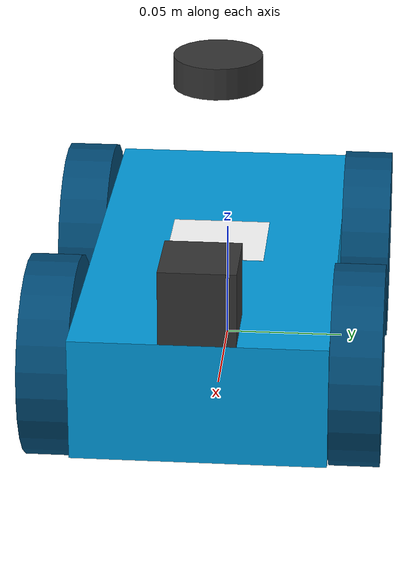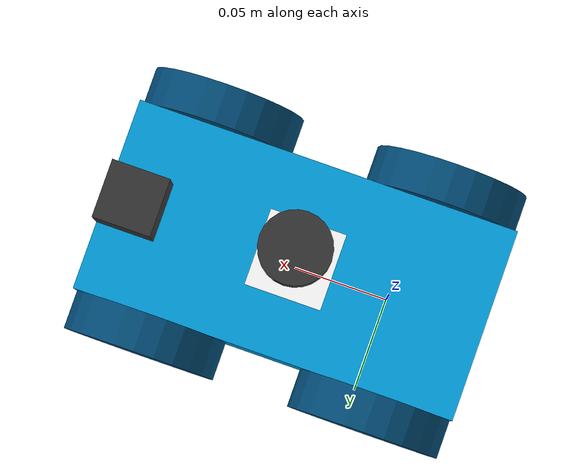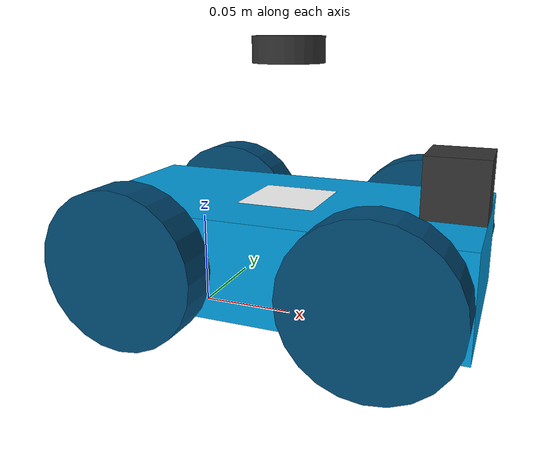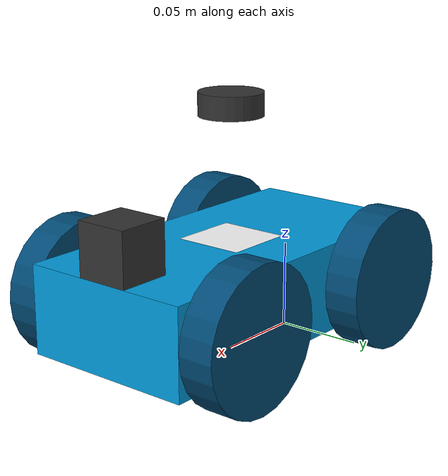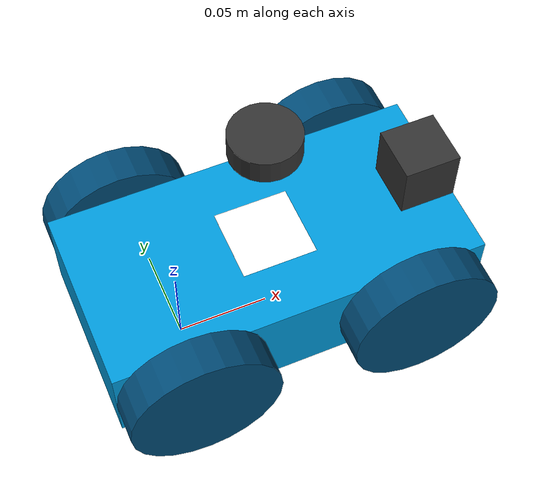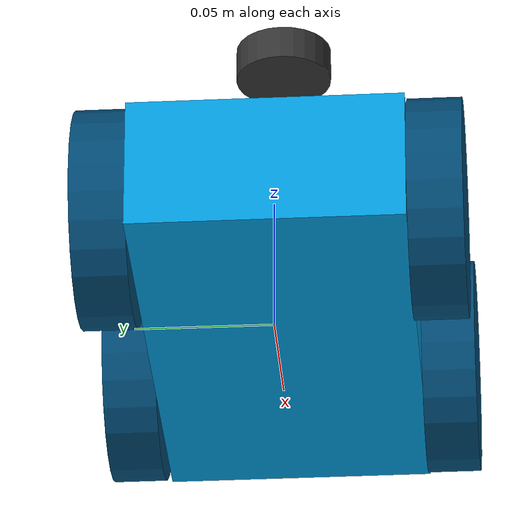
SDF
<?xml version="1.0" ?>
<sdf version="1.9">
  <model name="simple_robot" canonical_link="chassis">
    <pose>0 0 0 0 0 0</pose>

    <link name="chassis">
      <pose relative_to="__model__">0.05 0 0.04 0 0 0</pose>
      <inertial>
        <mass>4.5</mass>
        <inertia>
          <ixx>0.001191615</ixx><ixy>0</ixy><ixz>0</ixz>
          <iyy>0.004051490</iyy><iyz>0</iyz><izz>0.004766458</izz>
        </inertia>
      </inertial>
      <visual name="visual">
        <geometry><box><size>0.2 0.1 0.05</size></box></geometry>
        <material>
          <ambient>0.0 0.612 0.867 1</ambient>
          <diffuse>0.0 0.612 0.867 1</diffuse>
          <specular>0.0 0.612 0.867 1</specular>
        </material>
      </visual>

      <visual name="aruco_tag">
        <pose>0 0 0.0255 0 0 0</pose>
        <cast_shadows>false</cast_shadows>
        <geometry>
          <plane>
            <size>0.04 0.04</size>
            <normal>0 0 1</normal>
            <texture>
              <size>0.03 0.03</size>
            </texture>
          </plane>
        </geometry>
        <material>
          <diffuse>1 1 1 1</diffuse>
          <pbr>
            <metal>
              <albedo_map>file://models/simple_robot/Aruco3.png</albedo_map>
            </metal>
          </pbr>
          <double_sided>true</double_sided>
        </material>
      </visual>

      <collision name="collision">
        <geometry><box><size>0.2 0.1 0.05</size></box></geometry>
      </collision>
    </link>

    <!-- ROUE AVANT GAUCHE -->
    <link name="left_front_wheel">
      <pose relative_to="chassis">0.06 0.06 0 -1.5707 0 0</pose>
      <inertial>
        <mass>0.2</mass>
        <inertia>
          <ixx>0.000800</ixx><ixy>0</ixy><ixz>0</ixz>
          <iyy>0.000433</iyy><iyz>0</iyz><izz>0.000433</izz>
        </inertia>
      </inertial>
      <visual name="visual">
        <geometry><cylinder><radius>0.04</radius><length>0.02</length></cylinder></geometry>
        <material>
          <ambient>0.0 0.29 0.46 1</ambient>
          <diffuse>0.0 0.29 0.46 1</diffuse>
          <specular>0.0 0.0 0.0 1</specular>
        </material>
      </visual>
      <collision name="collision">
        <geometry><cylinder><radius>0.04</radius><length>0.02</length></cylinder></geometry>
        <surface>
          <friction>
            <ode>
              <mu>1.0</mu>
              <mu2>0.2</mu2>
              <fdir1>1 0 0</fdir1>
              <slip1>0.0</slip1>
              <slip2>0.0</slip2>
            </ode>
          </friction>
        </surface>
      </collision>
    </link>

    <!-- ROUE ARRIERE GAUCHE -->
    <link name="left_rear_wheel">
      <pose relative_to="chassis">-0.06 0.06 0 -1.5707 0 0</pose>
      <inertial>
        <mass>0.2</mass>
        <inertia>
          <ixx>0.000800</ixx><ixy>0</ixy><ixz>0</ixz>
          <iyy>0.000433</iyy><iyz>0</iyz><izz>0.000433</izz>
        </inertia>
      </inertial>
      <visual name="visual">
        <geometry><cylinder><radius>0.04</radius><length>0.02</length></cylinder></geometry>
        <material>
          <ambient>0.0 0.29 0.46 1</ambient>
          <diffuse>0.0 0.29 0.46 1</diffuse>
          <specular>0.0 0.0 0.0 1</specular>
        </material>
      </visual>
      <collision name="collision">
        <geometry><cylinder><radius>0.04</radius><length>0.02</length></cylinder></geometry>
        <surface>
          <friction>
            <ode>
              <mu>1.0</mu>
              <mu2>0.2</mu2>
              <fdir1>1 0 0</fdir1>
              <slip1>0.0</slip1>
              <slip2>0.0</slip2>
            </ode>
          </friction>
        </surface>
      </collision>
    </link>

    <!-- ROUE AVANT DROITE -->
    <link name="right_front_wheel">
      <pose relative_to="chassis">0.06 -0.06 0 -1.5707 0 0</pose>
      <inertial>
        <mass>0.2</mass>
        <inertia>
          <ixx>0.000800</ixx><ixy>0</ixy><ixz>0</ixz>
          <iyy>0.000433</iyy><iyz>0</iyz><izz>0.000433</izz>
        </inertia>
      </inertial>
      <visual name="visual">
        <geometry><cylinder><radius>0.04</radius><length>0.02</length></cylinder></geometry>
        <material>
          <ambient>0.0 0.29 0.46 1</ambient>
          <diffuse>0.0 0.29 0.46 1</diffuse>
          <specular>0.0 0.0 0.0 1</specular>
        </material>
      </visual>
      <collision name="collision">
        <geometry><cylinder><radius>0.04</radius><length>0.02</length></cylinder></geometry>
        <surface>
          <friction>
            <ode>
              <mu>1.0</mu>
              <mu2>0.2</mu2>
              <fdir1>1 0 0</fdir1>
              <slip1>0.0</slip1>
              <slip2>0.0</slip2>
            </ode>
          </friction>
        </surface>
      </collision>
    </link>

    <!-- ROUE ARRIERE DROITE -->
    <link name="right_rear_wheel">
      <pose relative_to="chassis">-0.06 -0.06 0 -1.5707 0 0</pose>
      <inertial>
        <mass>0.2</mass>
        <inertia>
          <ixx>0.000800</ixx><ixy>0</ixy><ixz>0</ixz>
          <iyy>0.000433</iyy><iyz>0</iyz><izz>0.000433</izz>
        </inertia>
      </inertial>
      <visual name="visual">
        <geometry><cylinder><radius>0.04</radius><length>0.02</length></cylinder></geometry>
        <material>
          <ambient>0.0 0.29 0.46 1</ambient>
          <diffuse>0.0 0.29 0.46 1</diffuse>
          <specular>0.0 0.0 0.0 1</specular>
        </material>
      </visual>
      <collision name="collision">
        <geometry><cylinder><radius>0.04</radius><length>0.02</length></cylinder></geometry>
        <surface>
          <friction>
            <ode>
              <mu>1.0</mu>
              <mu2>0.2</mu2>
              <fdir1>1 0 0</fdir1>
              <slip1>0.0</slip1>
              <slip2>0.0</slip2>
            </ode>
          </friction>
        </surface>
      </collision>
    </link>

    <joint name="left_front_wheel_joint" type="revolute">
      <pose relative_to="left_front_wheel"/>
      <parent>chassis</parent>
      <child>left_front_wheel</child>
      <axis>
        <xyz expressed_in="__model__">0 1 0</xyz>
        <limit><lower>-1.79769e+308</lower><upper>1.79769e+308</upper></limit>
      </axis>
    </joint>

    <joint name="left_rear_wheel_joint" type="revolute">
      <pose relative_to="left_rear_wheel"/>
      <parent>chassis</parent>
      <child>left_rear_wheel</child>
      <axis>
        <xyz expressed_in="__model__">0 1 0</xyz>
        <limit><lower>-1.79769e+308</lower><upper>1.79769e+308</upper></limit>
      </axis>
    </joint>

    <joint name="right_front_wheel_joint" type="revolute">
      <pose relative_to="right_front_wheel"/>
      <parent>chassis</parent>
      <child>right_front_wheel</child>
      <axis>
        <xyz expressed_in="__model__">0 1 0</xyz>
        <limit><lower>-1.79769e+308</lower><upper>1.79769e+308</upper></limit>
      </axis>
    </joint>

    <joint name="right_rear_wheel_joint" type="revolute">
      <pose relative_to="right_rear_wheel"/>
      <parent>chassis</parent>
      <child>right_rear_wheel</child>
      <axis>
        <xyz expressed_in="__model__">0 1 0</xyz>
        <limit><lower>-1.79769e+308</lower><upper>1.79769e+308</upper></limit>
      </axis>
    </joint>

    <plugin filename="libignition-gazebo-diff-drive-system.so"
            name="ignition::gazebo::systems::DiffDrive">
      <left_joint>left_front_wheel_joint</left_joint>
      <left_joint>left_rear_wheel_joint</left_joint>
      <right_joint>right_front_wheel_joint</right_joint>
      <right_joint>right_rear_wheel_joint</right_joint>
      <wheel_separation>0.12</wheel_separation>
      <wheel_radius>0.04</wheel_radius>
      <odom_publish_frequency>50</odom_publish_frequency>
      <topic>/cmd_vel</topic>
    </plugin>

    <plugin filename="libignition-gazebo-joint-state-publisher-system.so"
            name="ignition::gazebo::systems::JointStatePublisher">
      <update_rate>10</update_rate>
      <topic>/joint_states</topic>
    </plugin>

    <plugin filename="libignition-gazebo-pose-publisher-system.so"
            name="ignition::gazebo::systems::PosePublisher">
      <publish_link_pose>true</publish_link_pose>
      <publish_sensor_pose>true</publish_sensor_pose>
      <publish_collision_pose>false</publish_collision_pose>
      <publish_visual_pose>false</publish_visual_pose>
      <publish_nested_model_pose>true</publish_nested_model_pose>
      <use_pose_vector_msg>true</use_pose_vector_msg>
      <static_publisher>false</static_publisher>
      <static_update_frequency>10</static_update_frequency>
    </plugin>

    <link name="camera_link">
      <pose relative_to="chassis">0.085 0 0.04 0 0 0</pose>
      <inertial>
        <mass>0.01</mass>
        <inertia>
          <ixx>1e-6</ixx><iyy>1e-6</iyy><izz>1e-6</izz>
          <ixy>0</ixy><ixz>0</ixz><iyz>0</iyz>
        </inertia>
      </inertial>

      <visual name="camera_visual">
        <pose>0 0 0 0 0 0</pose>
        <geometry><box><size>0.03 0.03 0.03</size></box></geometry>
        <material>
          <ambient>0 0 0 1</ambient>
          <diffuse>0.2 0.2 0.2 1</diffuse>
        </material>
      </visual>

      <sensor name="camera_sensor" type="camera">
        <pose>0 0 0 0 0.5236 0</pose>
        <always_on>true</always_on>
        <update_rate>30</update_rate>
        <visualize>true</visualize>
        <camera>
          <horizontal_fov>1.78</horizontal_fov>
          <image>
            <width>640</width>
            <height>480</height>
            <format>RGB_INT8</format>
          </image>
          <clip><near>0.1</near><far>100</far></clip>
        </camera>
        <topic>camera/image_raw</topic>
      </sensor>
    </link>

    <joint name="camera_joint" type="fixed">
      <parent>chassis</parent>
      <child>camera_link</child>
      <pose relative_to="chassis">0 0 0 0 0 0</pose>
    </joint>

    <!-- LiDAR -->
    <link name="base_scan">
      <pose relative_to="chassis">0 0 0.10 0 0 0</pose>

      <inertial>
        <mass>0.05</mass>
        <inertia>
          <ixx>1.0e-5</ixx><iyy>1.0e-5</iyy><izz>1.0e-5</izz>
          <ixy>0</ixy><ixz>0</ixz><iyz>0</iyz>
        </inertia>
      </inertial>

      <visual name="lidar_visual">
        <pose>0 0 0 0 0 0</pose>
        <geometry>
          <cylinder>
            <radius>0.018</radius>
            <length>0.013</length>
          </cylinder>
        </geometry>
        <material>
          <ambient>0.1 0.1 0.1 1</ambient>
          <diffuse>0.2 0.2 0.2 1</diffuse>
        </material>
      </visual>

      <collision name="lidar_collision">
        <geometry>
          <cylinder>
            <radius>0.018</radius>
            <length>0.013</length>
          </cylinder>
        </geometry>
      </collision>

      <sensor name="hls_lfcd_lds" type="gpu_lidar">
        <pose>0 0 0.010 0 0 0</pose>
        <always_on>1</always_on>
        <update_rate>20</update_rate>
        <visualize>true</visualize>
        <topic>/lidar</topic>
        <gz_frame_id>simple_robot/base_scan/hls_lfcd_lds</gz_frame_id>
        <ray>
          <scan>
            <horizontal>
              <samples>360</samples>
              <resolution>1</resolution>
              <min_angle>-3.14159</min_angle>
              <max_angle>3.14159</max_angle>
            </horizontal>
            <vertical>
              <samples>1</samples>
              <resolution>1</resolution>
              <min_angle>0</min_angle>
              <max_angle>0</max_angle>
            </vertical>
          </scan>
          <range>
            <min>0.05</min>
            <max>6.0</max>
            <resolution>0.01</resolution>
          </range>
          <noise>
            <type>gaussian</type>
            <mean>0.0</mean>
            <stddev>0.01</stddev>
          </noise>
        </ray>
      </sensor>
    </link>

    <joint name="lidar_joint" type="fixed">
      <parent>chassis</parent>
      <child>base_scan</child>
      <pose relative_to="chassis">0 0 0 0 0 0</pose>
    </joint>

  </model>
</sdf>
